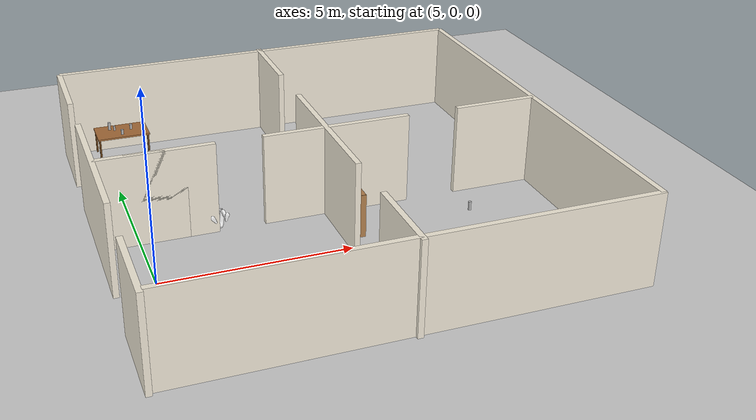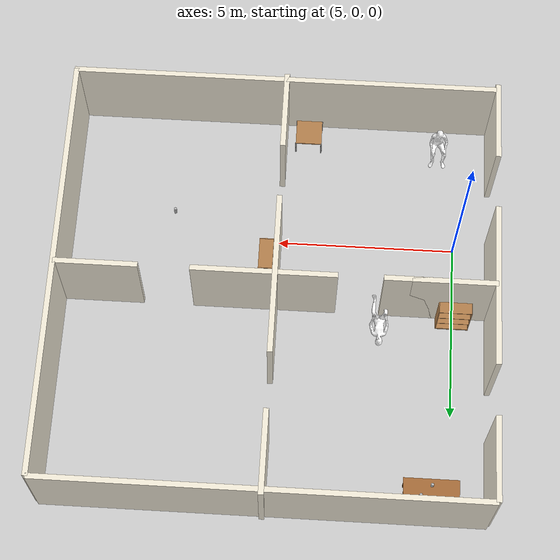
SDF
<sdf version="1.7">
 <world name="house">
  <plugin name="grasp_assist" filename="libgrasp_assist.so">
   <robot>tiago</robot>
   <finger_joint>gripper_left_finger_joint</finger_joint>
   <finger_joint>gripper_right_finger_joint</finger_joint>
   <max_mass>2.0</max_mass>
  </plugin>
  <plugin name="gazebo_ros_state" filename="libgazebo_ros_state.so">
   <ros><namespace>/gazebo</namespace></ros>
   <update_rate>1.0</update_rate>
  </plugin>
  <light name="sun" type="directional">
   <pose>0 0 10 0 -0 0</pose>
   <diffuse>0.8 0.8 0.8 1</diffuse>
   <specular>0.2 0.2 0.2 1</specular>
   <attenuation>
    <range>1000</range>
    <constant>0.9</constant>
    <linear>0.01</linear>
    <quadratic>0.001</quadratic>
   </attenuation>
   <direction>-0.5 0.1 -0.9</direction>
   <spot><inner_angle>0</inner_angle><outer_angle>0</outer_angle><falloff>0</falloff></spot>
  </light>
  <gravity>0 0 -9.81</gravity>
  <physics type="ode">
   <max_step_size>0.001</max_step_size>
   <real_time_factor>1</real_time_factor>
   <real_time_update_rate>1000</real_time_update_rate>
  </physics>
  <magnetic_field>6e-06 2.3e-05 -4.2e-05</magnetic_field>
  <atmosphere type="adiabatic"/>
  <scene><ambient>0.4 0.4 0.4 1</ambient><background>0.7 0.7 0.7 1</background><shadows>1</shadows></scene>
  <audio><device>default</device></audio>
  <spherical_coordinates>
   <surface_model>EARTH_WGS84</surface_model>
   <latitude_deg>0</latitude_deg>
   <longitude_deg>0</longitude_deg>
   <elevation>0</elevation>
   <heading_deg>0</heading_deg>
  </spherical_coordinates>
  <model name="ground_plane">
   <static>1</static>
   <link name="link">
    <collision name="collision">
     <geometry><plane><normal>0 0 1</normal><size>100 100</size></plane></geometry>
     <surface><friction><ode><mu>100</mu><mu2>50</mu2></ode></friction></surface>
    </collision>
    <visual name="visual">
     <cast_shadows>0</cast_shadows>
     <geometry><plane><normal>0 0 1</normal><size>100 100</size></plane></geometry>
     <material>
      <script><uri>file://media/materials/scripts/gazebo.material</uri><name>Gazebo/Grey</name></script>
     </material>
    </visual>
   </link>
  </model>
  <model name="wall_north">
   <static>1</static>
   <pose>10 8 1.25 0 -0 0</pose>
   <link name="link">
    <collision name="c"><geometry><box><size>12 0.15 2.5</size></box></geometry></collision>
    <visual name="v">
     <geometry><box><size>12 0.15 2.5</size></box></geometry>
     <material><ambient>0.95 0.92 0.85 1</ambient><diffuse>0.95 0.92 0.85 1</diffuse></material>
    </visual>
   </link>
  </model>
  <model name="wall_south">
   <static>1</static>
   <pose>10.057 -3.985 1.25 0 -0 0</pose>
   <link name="link">
    <collision name="c"><geometry><box><size>12 0.15 2.5</size></box></geometry></collision>
    <visual name="v">
     <geometry><box><size>12 0.15 2.5</size></box></geometry>
     <material><ambient>0.95 0.92 0.85 1</ambient><diffuse>0.95 0.92 0.85 1</diffuse></material>
    </visual>
   </link>
  </model>
  <model name="wall_east">
   <static>1</static>
   <pose>16 2 1.25 0 -0 0</pose>
   <link name="link">
    <collision name="c"><geometry><box><size>0.15 12 2.5</size></box></geometry></collision>
    <visual name="v">
     <geometry><box><size>0.15 12 2.5</size></box></geometry>
     <material><ambient>0.95 0.92 0.85 1</ambient><diffuse>0.95 0.92 0.85 1</diffuse></material>
    </visual>
   </link>
  </model>
  <model name="wall_west_s">
   <static>1</static>
   <pose>4 -3 1.25 0 -0 0</pose>
   <link name="link">
    <collision name="c"><geometry><box><size>0.15 2.3 2.5</size></box></geometry></collision>
    <visual name="v">
     <geometry><box><size>0.15 2.3 2.5</size></box></geometry>
     <material><ambient>0.95 0.92 0.85 1</ambient><diffuse>0.95 0.92 0.85 1</diffuse></material>
    </visual>
   </link>
  </model>
  <model name="wall_west_m">
   <static>1</static>
   <pose>4 2 1.25 0 -0 0</pose>
   <link name="link">
    <collision name="c"><geometry><box><size>0.15 4.6 2.5</size></box></geometry></collision>
    <visual name="v">
     <geometry><box><size>0.15 4.6 2.5</size></box></geometry>
     <material><ambient>0.95 0.92 0.85 1</ambient><diffuse>0.95 0.92 0.85 1</diffuse></material>
    </visual>
   </link>
  </model>
  <model name="wall_west_n">
   <static>1</static>
   <pose>4 6.85 1.25 0 -0 0</pose>
   <link name="link">
    <collision name="c"><geometry><box><size>0.15 2.3 2.5</size></box></geometry></collision>
    <visual name="v">
     <geometry><box><size>0.15 2.3 2.5</size></box></geometry>
     <material><ambient>0.95 0.92 0.85 1</ambient><diffuse>0.95 0.92 0.85 1</diffuse></material>
    </visual>
   </link>
  </model>
  <model name="wall_h_1">
   <static>1</static>
   <pose>5.15 2 1.25 0 -0 0</pose>
   <link name="link">
    <collision name="c"><geometry><box><size>2.3 0.15 2.5</size></box></geometry></collision>
    <visual name="v">
     <geometry><box><size>2.3 0.15 2.5</size></box></geometry>
     <material><ambient>0.95 0.92 0.85 1</ambient><diffuse>0.95 0.92 0.85 1</diffuse></material>
    </visual>
   </link>
  </model>
  <model name="wall_h_2">
   <static>1</static>
   <pose>10.297 2 1.25 0 -0 0</pose>
   <link name="link">
    <collision name="c"><geometry><box><size>4 0.15 2.5</size></box></geometry></collision>
    <visual name="v">
     <geometry><box><size>4 0.15 2.5</size></box></geometry>
     <material><ambient>0.95 0.92 0.85 1</ambient><diffuse>0.95 0.92 0.85 1</diffuse></material>
    </visual>
   </link>
  </model>
  <model name="wall_h_3">
   <static>1</static>
   <pose>14.85 2 1.25 0 -0 0</pose>
   <link name="link">
    <collision name="c"><geometry><box><size>2.3 0.15 2.5</size></box></geometry></collision>
    <visual name="v">
     <geometry><box><size>2.3 0.15 2.5</size></box></geometry>
     <material><ambient>0.95 0.92 0.85 1</ambient><diffuse>0.95 0.92 0.85 1</diffuse></material>
    </visual>
   </link>
  </model>
  <model name="kitchen_table">
   <static>1</static>
   <pose>5.544 7.435 0 0 -0 0</pose>
   <link name="base_link">
    <visual name="top">
     <pose>0 0 0.725 0 -0 0</pose>
     <geometry><box><size>1.5 0.9 0.05</size></box></geometry>
     <material><ambient>0.55 0.35 0.18 1</ambient><diffuse>0.65 0.42 0.22 1</diffuse></material>
    </visual>
    <collision name="top_c">
     <pose>0 0 0.725 0 -0 0</pose>
     <geometry><box><size>1.5 0.9 0.05</size></box></geometry>
    </collision>
    <visual name="leg1">
     <pose>-0.7 -0.4 0.35 0 -0 0</pose>
     <geometry><box><size>0.05 0.05 0.7</size></box></geometry>
     <material><ambient>0.4 0.25 0.1 1</ambient><diffuse>0.4 0.25 0.1 1</diffuse></material>
    </visual>
    <collision name="leg1_c">
     <pose>-0.7 -0.4 0.35 0 -0 0</pose>
     <geometry><box><size>0.05 0.05 0.7</size></box></geometry>
    </collision>
    <visual name="leg2">
     <pose>0.7 -0.4 0.35 0 -0 0</pose>
     <geometry><box><size>0.05 0.05 0.7</size></box></geometry>
     <material><ambient>0.4 0.25 0.1 1</ambient><diffuse>0.4 0.25 0.1 1</diffuse></material>
    </visual>
    <collision name="leg2_c">
     <pose>0.7 -0.4 0.35 0 -0 0</pose>
     <geometry><box><size>0.05 0.05 0.7</size></box></geometry>
    </collision>
    <visual name="leg3">
     <pose>-0.7 0.4 0.35 0 -0 0</pose>
     <geometry><box><size>0.05 0.05 0.7</size></box></geometry>
     <material><ambient>0.4 0.25 0.1 1</ambient><diffuse>0.4 0.25 0.1 1</diffuse></material>
    </visual>
    <collision name="leg3_c">
     <pose>-0.7 0.4 0.35 0 -0 0</pose>
     <geometry><box><size>0.05 0.05 0.7</size></box></geometry>
    </collision>
    <visual name="leg4">
     <pose>0.7 0.4 0.35 0 -0 0</pose>
     <geometry><box><size>0.05 0.05 0.7</size></box></geometry>
     <material><ambient>0.4 0.25 0.1 1</ambient><diffuse>0.4 0.25 0.1 1</diffuse></material>
    </visual>
    <collision name="leg4_c">
     <pose>0.7 0.4 0.35 0 -0 0</pose>
     <geometry><box><size>0.05 0.05 0.7</size></box></geometry>
    </collision>
    <inertial>
     <mass>20</mass>
     <inertia><ixx>1</ixx><ixy>0</ixy><ixz>0</ixz><iyy>1</iyy><iyz>0</iyz><izz>1</izz></inertia>
    </inertial>
   </link>
  </model>
  <model name="biscuits_pack">
   <static>0</static>
   <link name="link">
    <inertial>
     <mass>0.25</mass>
     <inertia><ixx>0.0005</ixx><ixy>0</ixy><ixz>0</ixz><iyy>0.0005</iyy><iyz>0</iyz><izz>0.0002</izz></inertia>
    </inertial>
    <collision name="collision">
     <geometry><cylinder><radius>0.029</radius><length>0.15</length></cylinder></geometry>
    </collision>
    <visual name="visual">
     <geometry><cylinder><radius>0.029</radius><length>0.15</length></cylinder></geometry>
     <material>
      <script>
       <uri>model://biscuits_pack/material/scripts</uri>
       <uri>model://biscuits_pack/material/textures</uri>
       <name>Custom/biscuits_pack</name>
      </script>
     </material>
    </visual>
    <velocity_decay><linear>0</linear><angular>0</angular></velocity_decay>
   </link>
   <pose>5.353 7.514 0.825 -1.3e-05 3e-06 -0.9899</pose>
  </model>
  <model name="cocacola">
   <static>0</static>
   <link name="link">
    <inertial>
     <mass>0.25</mass>
     <inertia><ixx>0.0005</ixx><ixy>0</ixy><ixz>0</ixz><iyy>0.0005</iyy><iyz>0</iyz><izz>0.0002</izz></inertia>
    </inertial>
    <collision name="collision">
     <pose>0 0 0.075 -3.14159 -0 0</pose>
     <geometry><cylinder><radius>0.04</radius><length>0.15</length></cylinder></geometry>
    </collision>
    <visual name="visual">
     <pose>0 0 0.075 -3.14159 -0 0</pose>
     <geometry><cylinder><radius>0.04</radius><length>0.15</length></cylinder></geometry>
     <material>
      <script>
       <uri>model://cocacola/material/scripts</uri>
       <uri>model://cocacola/material/textures</uri>
       <name>Custom/cocacola</name>
      </script>
     </material>
    </visual>
    <velocity_decay><linear>0</linear><angular>0</angular></velocity_decay>
   </link>
   <pose>5.526 7.176 0.75 -5e-06 0 0</pose>
  </model>
  <model name="pringles2">
   <static>0</static>
   <link name="link">
    <inertial>
     <mass>0.25</mass>
     <inertia><ixx>0.00125</ixx><ixy>0</ixy><ixz>0</ixz><iyy>0.00125</iyy><iyz>0</iyz><izz>0.0002</izz></inertia>
    </inertial>
    <collision name="collision">
     <pose>0 0 0.12 -3.14159 -0 0</pose>
     <geometry><cylinder><radius>0.04</radius><length>0.235</length></cylinder></geometry>
    </collision>
    <visual name="visual">
     <pose>0 0 0.12 -3.14159 -0 0</pose>
     <geometry><cylinder><radius>0.04</radius><length>0.235</length></cylinder></geometry>
     <material>
      <script>
       <uri>model://pringles2/material/scripts</uri>
       <uri>model://pringles2/material/textures</uri>
       <name>Custom/pringles2</name>
      </script>
     </material>
    </visual>
    <velocity_decay><linear>0</linear><angular>0</angular></velocity_decay>
   </link>
   <pose>5.222 7.611 0.747498 -1.9e-05 -0 3e-06</pose>
  </model>
  <model name="sprite">
   <static>0</static>
   <link name="link">
    <inertial>
     <mass>0.25</mass>
     <inertia><ixx>0.0005</ixx><ixy>0</ixy><ixz>0</ixz><iyy>0.0005</iyy><iyz>0</iyz><izz>0.0002</izz></inertia>
    </inertial>
    <collision name="collision">
     <pose>0 0 0.075 -3.14159 -0 0</pose>
     <geometry><cylinder><radius>0.04</radius><length>0.15</length></cylinder></geometry>
    </collision>
    <visual name="visual">
     <pose>0 0 0.075 -3.14159 -0 0</pose>
     <geometry><cylinder><radius>0.04</radius><length>0.15</length></cylinder></geometry>
     <material>
      <script>
       <uri>model://sprite/material/scripts</uri>
       <uri>model://sprite/material/textures</uri>
       <name>Custom/sprite</name>
      </script>
     </material>
    </visual>
    <velocity_decay><linear>0</linear><angular>0</angular></velocity_decay>
   </link>
   <pose>5.829 7.47 0.750005 4.5e-05 0.000121 -1e-06</pose>
  </model>
  <model name="sitting_clone">
   <static>1</static>
   <link name="link">
    <collision name="collision">
     <geometry><box><size>0.6 0.6 1.2</size></box></geometry>
     <pose>0 0 0.6 0 -0 0</pose>
    </collision>
    <visual name="visual">
     <geometry><mesh><uri>model://sitting/meshes/sitting.dae</uri><scale>0.01 0.01 0.01</scale></mesh></geometry>
     <material>
      <diffuse>1 1 1 1</diffuse>
      <specular>0.2 0.2 0.2 1</specular>
      <pbr><metal><albedo_map>model://sitting/meshes/Ch21_1001_Diffuse.png</albedo_map></metal></pbr>
     </material>
    </visual>
    <inertial>
     <mass>70</mass>
     <inertia><ixx>1</ixx><ixy>0</ixy><ixz>0</ixz><iyy>1</iyy><iyz>0</iyz><izz>1</izz></inertia>
    </inertial>
   </link>
   <pose>5.531 -3.327 0 1.573 0.004 -3.071</pose>
  </model>
  <model name="sitting_0">
   <static>1</static>
   <link name="link">
    <collision name="collision">
     <geometry><box><size>0.6 0.6 1.2</size></box></geometry>
     <pose>0 0 0.6 0 -0 0</pose>
    </collision>
    <visual name="visual">
     <geometry>
      <mesh>
       <uri>file:///root/exchange/src/robot_factory/models/sitting/meshes/sitting.dae</uri>
       <scale>0.01 0.01 0.01</scale>
      </mesh>
     </geometry>
     <material>
      <diffuse>1 1 1 1</diffuse>
      <specular>0.2 0.2 0.2 1</specular>
      <pbr>
       <metal>
        <albedo_map>file:///root/exchange/src/robot_factory/models/sitting/Ch21_1001_Diffuse.png</albedo_map>
       </metal>
      </pbr>
     </material>
    </visual>
    <inertial>
     <mass>70</mass>
     <inertia><ixx>1</ixx><ixy>0</ixy><ixz>0</ixz><iyy>1</iyy><iyz>0</iyz><izz>1</izz></inertia>
    </inertial>
   </link>
   <pose>7.032 1.71 0 0 -0 0</pose>
  </model>
  <model name="wall_west_m_clone">
   <static>1</static>
   <pose>10 2 1.25 0 -0 0</pose>
   <link name="link">
    <collision name="c"><geometry><box><size>0.15 4.6 2.5</size></box></geometry></collision>
    <visual name="v">
     <geometry><box><size>0.15 4.6 2.5</size></box></geometry>
     <material><ambient>0.95 0.92 0.85 1</ambient><diffuse>0.95 0.92 0.85 1</diffuse></material>
    </visual>
   </link>
  </model>
  <model name="wall_west_n_clone">
   <static>1</static>
   <pose>10 7 1.25 0 -0 0</pose>
   <link name="link">
    <collision name="c"><geometry><box><size>0.15 2.3 2.5</size></box></geometry></collision>
    <visual name="v">
     <geometry><box><size>0.15 2.3 2.5</size></box></geometry>
     <material><ambient>0.95 0.92 0.85 1</ambient><diffuse>0.95 0.92 0.85 1</diffuse></material>
    </visual>
   </link>
  </model>
  <model name="wall_west_s_clone">
   <static>1</static>
   <pose>10 -3 1.25 0 -0 0</pose>
   <link name="link">
    <collision name="c"><geometry><box><size>0.15 2.3 2.5</size></box></geometry></collision>
    <visual name="v">
     <geometry><box><size>0.15 2.3 2.5</size></box></geometry>
     <material><ambient>0.95 0.92 0.85 1</ambient><diffuse>0.95 0.92 0.85 1</diffuse></material>
    </visual>
   </link>
  </model>
  <model name="bookshelf">
   <static>1</static>
   <link name="link">
    <inertial><mass>1</mass></inertial>
    <collision name="back">
     <pose>0 0.005 0.6 0 -0 0</pose>
     <geometry><box><size>0.9 0.01 1.2</size></box></geometry>
    </collision>
    <visual name="visual1">
     <pose>0 0.005 0.6 0 -0 0</pose>
     <geometry><box><size>0.9 0.01 1.2</size></box></geometry>
     <material>
      <script><uri>file://media/materials/scripts/gazebo.material</uri><name>Gazebo/Wood</name></script>
     </material>
    </visual>
    <collision name="left_side">
     <pose>0.45 -0.195 0.6 0 -0 0</pose>
     <geometry><box><size>0.02 0.4 1.2</size></box></geometry>
    </collision>
    <visual name="visual2">
     <pose>0.45 -0.195 0.6 0 -0 0</pose>
     <geometry><box><size>0.02 0.4 1.2</size></box></geometry>
     <material>
      <script><uri>file://media/materials/scripts/gazebo.material</uri><name>Gazebo/Wood</name></script>
     </material>
    </visual>
    <collision name="right_side">
     <pose>-0.45 -0.195 0.6 0 -0 0</pose>
     <geometry><box><size>0.02 0.4 1.2</size></box></geometry>
    </collision>
    <visual name="visual3">
     <pose>-0.45 -0.195 0.6 0 -0 0</pose>
     <geometry><box><size>0.02 0.4 1.2</size></box></geometry>
     <material>
      <script><uri>file://media/materials/scripts/gazebo.material</uri><name>Gazebo/Wood</name></script>
     </material>
    </visual>
    <collision name="bottom">
     <pose>0 -0.195 0.03 0 -0 0</pose>
     <geometry><box><size>0.88 0.4 0.06</size></box></geometry>
    </collision>
    <visual name="visual4">
     <pose>0 -0.195 0.03 0 -0 0</pose>
     <geometry><box><size>0.88 0.4 0.06</size></box></geometry>
     <material>
      <script><uri>file://media/materials/scripts/gazebo.material</uri><name>Gazebo/Wood</name></script>
     </material>
    </visual>
    <collision name="top">
     <pose>0 -0.195 1.19 0 -0 0</pose>
     <geometry><box><size>0.88 0.4 0.02</size></box></geometry>
    </collision>
    <visual name="visual5">
     <pose>0 -0.195 1.19 0 -0 0</pose>
     <geometry><box><size>0.88 0.4 0.02</size></box></geometry>
     <material>
      <script><uri>file://media/materials/scripts/gazebo.material</uri><name>Gazebo/Wood</name></script>
     </material>
    </visual>
    <collision name="low_shelf">
     <pose>0 -0.195 0.43 0 -0 0</pose>
     <geometry><box><size>0.88 0.4 0.02</size></box></geometry>
    </collision>
    <visual name="visual6">
     <pose>0 -0.195 0.43 0 -0 0</pose>
     <geometry><box><size>0.88 0.4 0.02</size></box></geometry>
     <material>
      <script><uri>file://media/materials/scripts/gazebo.material</uri><name>Gazebo/Wood</name></script>
     </material>
    </visual>
    <collision name="high_shelf">
     <pose>0 -0.195 0.8 0 -0 0</pose>
     <geometry><box><size>0.88 0.4 0.02</size></box></geometry>
    </collision>
    <visual name="visual7">
     <pose>0 -0.195 0.8 0 -0 0</pose>
     <geometry><box><size>0.88 0.4 0.02</size></box></geometry>
     <material>
      <script><uri>file://media/materials/scripts/gazebo.material</uri><name>Gazebo/Wood</name></script>
     </material>
    </visual>
    <velocity_decay><linear>0</linear><angular>0</angular></velocity_decay>
   </link>
   <pose>5 2 0 0 0 -3.14119</pose>
  </model>
  <model name="wall_h_1_clone">
   <static>1</static>
   <pose>5.914 2 1.25 0 -0 0</pose>
   <link name="link">
    <collision name="c"><geometry><box><size>2.3 0.15 2.5</size></box></geometry></collision>
    <visual name="v">
     <geometry><box><size>2.3 0.15 2.5</size></box></geometry>
     <material><ambient>0.95 0.92 0.85 1</ambient><diffuse>0.95 0.92 0.85 1</diffuse></material>
    </visual>
   </link>
  </model>
  <model name="pringles">
   <static>0</static>
   <link name="link">
    <inertial>
     <mass>0.25</mass>
     <inertia><ixx>0</ixx><ixy>0</ixy><ixz>0</ixz><iyy>0</iyy><iyz>0</iyz><izz>0</izz></inertia>
    </inertial>
    <collision name="collision">
     <geometry><cylinder><radius>0.04</radius><length>0.235</length></cylinder></geometry>
    </collision>
    <visual name="visual">
     <geometry><cylinder><radius>0.04</radius><length>0.235</length></cylinder></geometry>
     <material>
      <script>
       <uri>model://pringles/material/scripts</uri>
       <uri>model://pringles/material/textures</uri>
       <name>Custom/pringles</name>
      </script>
     </material>
    </visual>
    <velocity_decay><linear>0</linear><angular>0</angular></velocity_decay>
   </link>
   <pose>12.9752 -0.449163 0.892501 -1e-05 1.3e-05 -0.769061</pose>
  </model>
  <model name="bookshelf_clone">
   <static>1</static>
   <link name="link">
    <inertial><mass>1</mass></inertial>
    <collision name="back">
     <pose>0 0.005 0.6 0 -0 0</pose>
     <geometry><box><size>0.9 0.01 1.2</size></box></geometry>
    </collision>
    <visual name="visual1">
     <pose>0 0.005 0.6 0 -0 0</pose>
     <geometry><box><size>0.9 0.01 1.2</size></box></geometry>
     <material>
      <script><uri>file://media/materials/scripts/gazebo.material</uri><name>Gazebo/Wood</name></script>
     </material>
    </visual>
    <collision name="left_side">
     <pose>0.45 -0.195 0.6 0 -0 0</pose>
     <geometry><box><size>0.02 0.4 1.2</size></box></geometry>
    </collision>
    <visual name="visual2">
     <pose>0.45 -0.195 0.6 0 -0 0</pose>
     <geometry><box><size>0.02 0.4 1.2</size></box></geometry>
     <material>
      <script><uri>file://media/materials/scripts/gazebo.material</uri><name>Gazebo/Wood</name></script>
     </material>
    </visual>
    <collision name="right_side">
     <pose>-0.45 -0.195 0.6 0 -0 0</pose>
     <geometry><box><size>0.02 0.4 1.2</size></box></geometry>
    </collision>
    <visual name="visual3">
     <pose>-0.45 -0.195 0.6 0 -0 0</pose>
     <geometry><box><size>0.02 0.4 1.2</size></box></geometry>
     <material>
      <script><uri>file://media/materials/scripts/gazebo.material</uri><name>Gazebo/Wood</name></script>
     </material>
    </visual>
    <collision name="bottom">
     <pose>0 -0.195 0.03 0 -0 0</pose>
     <geometry><box><size>0.88 0.4 0.06</size></box></geometry>
    </collision>
    <visual name="visual4">
     <pose>0 -0.195 0.03 0 -0 0</pose>
     <geometry><box><size>0.88 0.4 0.06</size></box></geometry>
     <material>
      <script><uri>file://media/materials/scripts/gazebo.material</uri><name>Gazebo/Wood</name></script>
     </material>
    </visual>
    <collision name="top">
     <pose>0 -0.195 1.19 0 -0 0</pose>
     <geometry><box><size>0.88 0.4 0.02</size></box></geometry>
    </collision>
    <visual name="visual5">
     <pose>0 -0.195 1.19 0 -0 0</pose>
     <geometry><box><size>0.88 0.4 0.02</size></box></geometry>
     <material>
      <script><uri>file://media/materials/scripts/gazebo.material</uri><name>Gazebo/Wood</name></script>
     </material>
    </visual>
    <collision name="low_shelf">
     <pose>0 -0.195 0.43 0 -0 0</pose>
     <geometry><box><size>0.88 0.4 0.02</size></box></geometry>
    </collision>
    <visual name="visual6">
     <pose>0 -0.195 0.43 0 -0 0</pose>
     <geometry><box><size>0.88 0.4 0.02</size></box></geometry>
     <material>
      <script><uri>file://media/materials/scripts/gazebo.material</uri><name>Gazebo/Wood</name></script>
     </material>
    </visual>
    <collision name="high_shelf">
     <pose>0 -0.195 0.8 0 -0 0</pose>
     <geometry><box><size>0.88 0.4 0.02</size></box></geometry>
    </collision>
    <visual name="visual7">
     <pose>0 -0.195 0.8 0 -0 0</pose>
     <geometry><box><size>0.88 0.4 0.02</size></box></geometry>
     <material>
      <script><uri>file://media/materials/scripts/gazebo.material</uri><name>Gazebo/Wood</name></script>
     </material>
    </visual>
    <velocity_decay><linear>0</linear><angular>0</angular></velocity_decay>
   </link>
   <pose>10.1175 0.881564 0 0 -0 1.57275</pose>
  </model>
  <model name="table">
   <static>1</static>
   <link name="link">
    <collision name="surface">
     <pose>0 0 0.5 0 -0 0</pose>
     <geometry><box><size>0.75 0.75 0.04</size></box></geometry>
    </collision>
    <visual name="visual1">
     <pose>0 0 0.5 0 -0 0</pose>
     <geometry><box><size>0.75 0.75 0.04</size></box></geometry>
     <material>
      <script><uri>file://media/materials/scripts/gazebo.material</uri><name>Gazebo/Wood</name></script>
     </material>
    </visual>
    <collision name="front_left_leg">
     <pose>0.37 0.37 0.25 0 -0 0</pose>
     <geometry><cylinder><radius>0.02</radius><length>0.5</length></cylinder></geometry>
    </collision>
    <visual name="front_left_leg_visual">
     <pose>0.37 0.37 0.25 0 -0 0</pose>
     <geometry><cylinder><radius>0.02</radius><length>0.5</length></cylinder></geometry>
     <material>
      <script><uri>file://media/materials/scripts/gazebo.material</uri><name>Gazebo/Grey</name></script>
     </material>
    </visual>
    <collision name="front_right_leg">
     <pose>0.37 -0.37 0.25 0 -0 0</pose>
     <geometry><cylinder><radius>0.02</radius><length>0.5</length></cylinder></geometry>
    </collision>
    <visual name="front_right_leg_visual">
     <pose>0.37 -0.37 0.25 0 -0 0</pose>
     <geometry><cylinder><radius>0.02</radius><length>0.5</length></cylinder></geometry>
     <material>
      <script><uri>file://media/materials/scripts/gazebo.material</uri><name>Gazebo/Grey</name></script>
     </material>
    </visual>
    <collision name="back_right_leg">
     <pose>-0.37 -0.37 0.25 0 -0 0</pose>
     <geometry><cylinder><radius>0.02</radius><length>0.5</length></cylinder></geometry>
    </collision>
    <visual name="back_right_leg_visual">
     <pose>-0.37 -0.37 0.25 0 -0 0</pose>
     <geometry><cylinder><radius>0.02</radius><length>0.5</length></cylinder></geometry>
     <material>
      <script><uri>file://media/materials/scripts/gazebo.material</uri><name>Gazebo/Grey</name></script>
     </material>
    </visual>
    <collision name="back_left_leg">
     <pose>-0.37 0.37 0.25 0 -0 0</pose>
     <geometry><cylinder><radius>0.02</radius><length>0.5</length></cylinder></geometry>
    </collision>
    <visual name="back_left_leg_visual">
     <pose>-0.37 0.37 0.25 0 -0 0</pose>
     <geometry><cylinder><radius>0.02</radius><length>0.5</length></cylinder></geometry>
     <material>
      <script><uri>file://media/materials/scripts/gazebo.material</uri><name>Gazebo/Grey</name></script>
     </material>
    </visual>
    <velocity_decay><linear>0</linear><angular>0</angular></velocity_decay>
   </link>
   <pose>9.29826 -3.41346 0 0 -0 0</pose>
  </model>
 </world>
</sdf>
